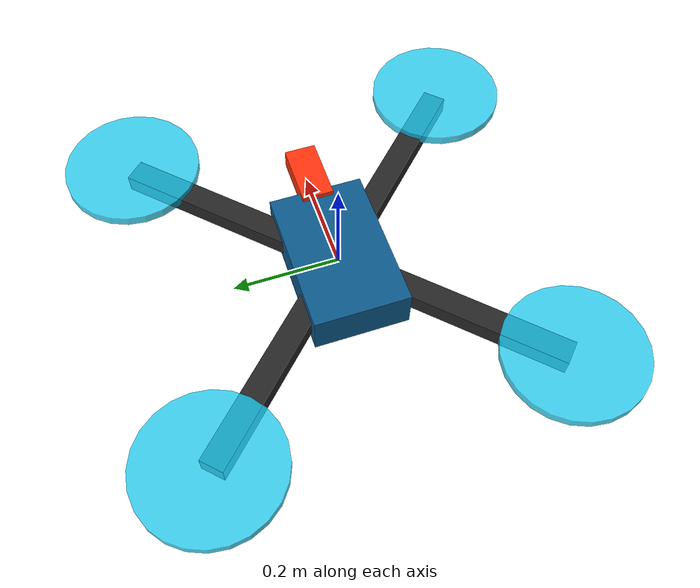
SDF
<?xml version="1.0"?>
<sdf version="1.6">
  <model name="super_mock_drone">
    <static>false</static>
    <allow_auto_disable>false</allow_auto_disable>
    <link name="body">
      <gravity>false</gravity>
      <kinematic>true</kinematic>
      <inertial>
        <mass>1.0</mass>
        <inertia>
          <ixx>0.02</ixx>
          <iyy>0.02</iyy>
          <izz>0.04</izz>
          <ixy>0</ixy>
          <ixz>0</ixz>
          <iyz>0</iyz>
        </inertia>
      </inertial>
      <visual name="center_body">
        <geometry>
          <box>
            <size>0.28 0.18 0.08</size>
          </box>
        </geometry>
        <material>
          <ambient>0.05 0.15 0.22 1</ambient>
          <diffuse>0.05 0.35 0.55 1</diffuse>
        </material>
      </visual>
      <visual name="front_marker">
        <pose>0.18 0 0.03 0 0 0</pose>
        <geometry>
          <box>
            <size>0.12 0.06 0.04</size>
          </box>
        </geometry>
        <material>
          <ambient>1.0 0.2 0.05 1</ambient>
          <diffuse>1.0 0.2 0.05 1</diffuse>
        </material>
      </visual>
      <visual name="x_arm">
        <pose>0 0 0 0 0 0.785398</pose>
        <geometry>
          <box>
            <size>0.9 0.045 0.035</size>
          </box>
        </geometry>
        <material>
          <ambient>0.1 0.1 0.1 1</ambient>
          <diffuse>0.15 0.15 0.15 1</diffuse>
        </material>
      </visual>
      <visual name="y_arm">
        <pose>0 0 0 0 0 -0.785398</pose>
        <geometry>
          <box>
            <size>0.9 0.045 0.035</size>
          </box>
        </geometry>
        <material>
          <ambient>0.1 0.1 0.1 1</ambient>
          <diffuse>0.15 0.15 0.15 1</diffuse>
        </material>
      </visual>
      <visual name="rotor_front_left">
        <pose>0.32 0.32 0.02 0 0 0</pose>
        <geometry>
          <cylinder>
            <radius>0.13</radius>
            <length>0.018</length>
          </cylinder>
        </geometry>
        <material>
          <ambient>0.1 0.8 0.95 0.8</ambient>
          <diffuse>0.1 0.8 0.95 0.8</diffuse>
        </material>
      </visual>
      <visual name="rotor_front_right">
        <pose>0.32 -0.32 0.02 0 0 0</pose>
        <geometry>
          <cylinder>
            <radius>0.13</radius>
            <length>0.018</length>
          </cylinder>
        </geometry>
        <material>
          <ambient>0.1 0.8 0.95 0.8</ambient>
          <diffuse>0.1 0.8 0.95 0.8</diffuse>
        </material>
      </visual>
      <visual name="rotor_back_left">
        <pose>-0.32 0.32 0.02 0 0 0</pose>
        <geometry>
          <cylinder>
            <radius>0.13</radius>
            <length>0.018</length>
          </cylinder>
        </geometry>
        <material>
          <ambient>0.1 0.8 0.95 0.8</ambient>
          <diffuse>0.1 0.8 0.95 0.8</diffuse>
        </material>
      </visual>
      <visual name="rotor_back_right">
        <pose>-0.32 -0.32 0.02 0 0 0</pose>
        <geometry>
          <cylinder>
            <radius>0.13</radius>
            <length>0.018</length>
          </cylinder>
        </geometry>
        <material>
          <ambient>0.1 0.8 0.95 0.8</ambient>
          <diffuse>0.1 0.8 0.95 0.8</diffuse>
        </material>
      </visual>
    </link>
  </model>
</sdf>
